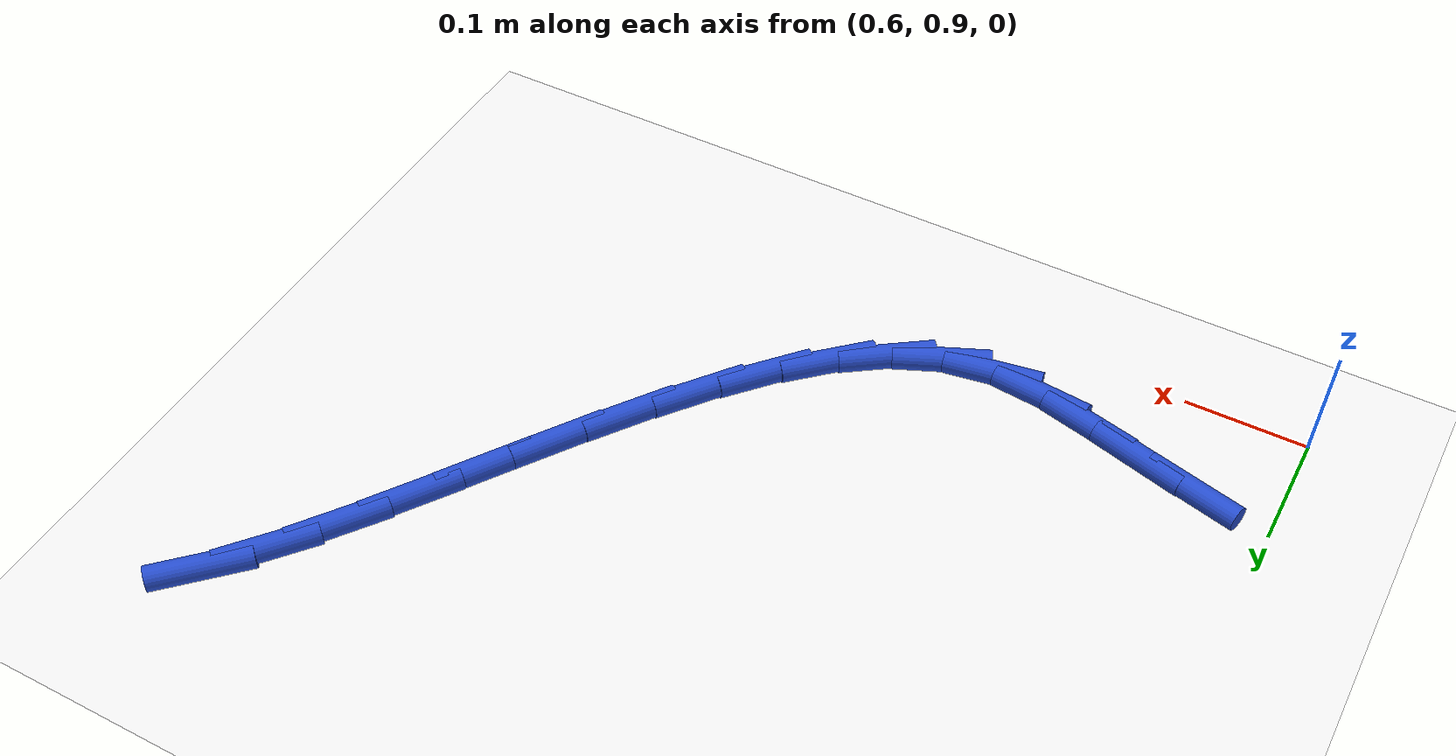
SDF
<sdf version="1.6">
 <world name="default">
  <model name="ground_plane">
   <static>1</static>
   <link name="link">
    <collision name="collision">
     <geometry><plane><normal>0 0 1</normal><size>100 100</size></plane></geometry>
     <surface><friction><ode><mu>100</mu><mu2>50</mu2></ode></friction></surface>
    </collision>
    <visual name="visual">
     <cast_shadows>0</cast_shadows>
     <geometry><plane><normal>0 0 1</normal><size>100 100</size></plane></geometry>
     <material>
      <script><uri>file://media/materials/scripts/gazebo.material</uri><name>Gazebo/WhiteGlow</name></script>
     </material>
    </visual>
   </link>
  </model>
  <model name="line">
   <link name="link_32">
    <pose>0.6630423774283201 0.9929440717888439 0.01 0 1.57 -0.24759428176950896</pose>
    <collision name="collision">
     <geometry><cylinder><radius>0.01</radius><length>0.08</length></cylinder></geometry>
    </collision>
    <visual name="visual">
     <material>
      <script><name>Gazebo/Blue</name><uri>file://media/materials/scripts/gazebo.material</uri></script>
     </material>
     <geometry><cylinder><radius>0.01</radius><length>0.08</length></cylinder></geometry>
    </visual>
   </link>
   <link name="link_33">
    <pose>0.7106921801257884 0.9808991108439356 0.01 0 1.57 -0.2659017500576483</pose>
    <collision name="collision">
     <geometry><cylinder><radius>0.01</radius><length>0.08</length></cylinder></geometry>
    </collision>
    <visual name="visual">
     <material>
      <script><name>Gazebo/Blue</name><uri>file://media/materials/scripts/gazebo.material</uri></script>
     </material>
     <geometry><cylinder><radius>0.01</radius><length>0.08</length></cylinder></geometry>
    </visual>
   </link>
   <link name="link_34">
    <pose>0.7570323707288211 0.9682783157123244 0.01 0 1.57 -0.2380853753194528</pose>
    <collision name="collision">
     <geometry><cylinder><radius>0.01</radius><length>0.08</length></cylinder></geometry>
    </collision>
    <visual name="visual">
     <material>
      <script><name>Gazebo/Blue</name><uri>file://media/materials/scripts/gazebo.material</uri></script>
     </material>
     <geometry><cylinder><radius>0.01</radius><length>0.08</length></cylinder></geometry>
    </visual>
   </link>
   <link name="link_35">
    <pose>0.8017753994072406 0.957419703183818 0.01 0 1.57 -0.09836362308103652</pose>
    <collision name="collision">
     <geometry><cylinder><radius>0.01</radius><length>0.08</length></cylinder></geometry>
    </collision>
    <visual name="visual">
     <material>
      <script><name>Gazebo/Blue</name><uri>file://media/materials/scripts/gazebo.material</uri></script>
     </material>
     <geometry><cylinder><radius>0.01</radius><length>0.08</length></cylinder></geometry>
    </visual>
   </link>
   <link name="link_36">
    <pose>0.8449845640259951 0.9531557324456068 0.01 0 1.57 0.16148460717505797</pose>
    <collision name="collision">
     <geometry><cylinder><radius>0.01</radius><length>0.08</length></cylinder></geometry>
    </collision>
    <visual name="visual">
     <material>
      <script><name>Gazebo/Blue</name><uri>file://media/materials/scripts/gazebo.material</uri></script>
     </material>
     <geometry><cylinder><radius>0.01</radius><length>0.08</length></cylinder></geometry>
    </visual>
   </link>
   <link name="link_37">
    <pose>0.8867484457921553 0.9599591981775714 0.01 0 1.57 0.4220266790031647</pose>
    <collision name="collision">
     <geometry><cylinder><radius>0.01</radius><length>0.08</length></cylinder></geometry>
    </collision>
    <visual name="visual">
     <material>
      <script><name>Gazebo/Blue</name><uri>file://media/materials/scripts/gazebo.material</uri></script>
     </material>
     <geometry><cylinder><radius>0.01</radius><length>0.08</length></cylinder></geometry>
    </visual>
   </link>
   <link name="link_38">
    <pose>0.9271526825461279 0.9781009269569306 0.01 0 1.57 0.6175205332455116</pose>
    <collision name="collision">
     <geometry><cylinder><radius>0.01</radius><length>0.08</length></cylinder></geometry>
    </collision>
    <visual name="visual">
     <material>
      <script><name>Gazebo/Blue</name><uri>file://media/materials/scripts/gazebo.material</uri></script>
     </material>
     <geometry><cylinder><radius>0.01</radius><length>0.08</length></cylinder></geometry>
    </visual>
   </link>
   <link name="link_39">
    <pose>0.966281537390652 1.0058891615231023 0.01 0 1.57 0.7554648651735559</pose>
    <collision name="collision">
     <geometry><cylinder><radius>0.01</radius><length>0.08</length></cylinder></geometry>
    </collision>
    <visual name="visual">
     <material>
      <script><name>Gazebo/Blue</name><uri>file://media/materials/scripts/gazebo.material</uri></script>
     </material>
     <geometry><cylinder><radius>0.01</radius><length>0.08</length></cylinder></geometry>
    </visual>
   </link>
   <link name="link_40">
    <pose>1.0042192656612905 1.041621056151405 0.01 0 1.57 0.8505547769216781</pose>
    <collision name="collision">
     <geometry><cylinder><radius>0.01</radius><length>0.08</length></cylinder></geometry>
    </collision>
    <visual name="visual">
     <material>
      <script><name>Gazebo/Blue</name><uri>file://media/materials/scripts/gazebo.material</uri></script>
     </material>
     <geometry><cylinder><radius>0.01</radius><length>0.08</length></cylinder></geometry>
    </visual>
   </link>
   <link name="link_41">
    <pose>1.0410501226936089 1.0835937651171585 0.01 0 1.57 0.9146848388607492</pose>
    <collision name="collision">
     <geometry><cylinder><radius>0.01</radius><length>0.08</length></cylinder></geometry>
    </collision>
    <visual name="visual">
     <material>
      <script><name>Gazebo/Blue</name><uri>file://media/materials/scripts/gazebo.material</uri></script>
     </material>
     <geometry><cylinder><radius>0.01</radius><length>0.08</length></cylinder></geometry>
    </visual>
   </link>
   <link name="link_42">
    <pose>1.0768583638231708 1.1301044426956826 0.01 0 1.57 0.9556256558031722</pose>
    <collision name="collision">
     <geometry><cylinder><radius>0.01</radius><length>0.08</length></cylinder></geometry>
    </collision>
    <visual name="visual">
     <material>
      <script><name>Gazebo/Blue</name><uri>file://media/materials/scripts/gazebo.material</uri></script>
     </material>
     <geometry><cylinder><radius>0.01</radius><length>0.08</length></cylinder></geometry>
    </visual>
   </link>
   <link name="link_43">
    <pose>1.1117282443855405 1.1794502431622962 0.01 0 1.57 0.9778218241050537</pose>
    <collision name="collision">
     <geometry><cylinder><radius>0.01</radius><length>0.08</length></cylinder></geometry>
    </collision>
    <visual name="visual">
     <material>
      <script><name>Gazebo/Blue</name><uri>file://media/materials/scripts/gazebo.material</uri></script>
     </material>
     <geometry><cylinder><radius>0.01</radius><length>0.08</length></cylinder></geometry>
    </visual>
   </link>
   <link name="link_44">
    <pose>1.1457440197162827 1.229928320792319 0.01 0 1.57 0.9831509697490062</pose>
    <collision name="collision">
     <geometry><cylinder><radius>0.01</radius><length>0.08</length></cylinder></geometry>
    </collision>
    <visual name="visual">
     <material>
      <script><name>Gazebo/Blue</name><uri>file://media/materials/scripts/gazebo.material</uri></script>
     </material>
     <geometry><cylinder><radius>0.01</radius><length>0.08</length></cylinder></geometry>
    </visual>
   </link>
   <link name="link_45">
    <pose>1.1789899451509618 1.2798358298610706 0.01 0 1.57 0.9711955081836428</pose>
    <collision name="collision">
     <geometry><cylinder><radius>0.01</radius><length>0.08</length></cylinder></geometry>
    </collision>
    <visual name="visual">
     <material>
      <script><name>Gazebo/Blue</name><uri>file://media/materials/scripts/gazebo.material</uri></script>
     </material>
     <geometry><cylinder><radius>0.01</radius><length>0.08</length></cylinder></geometry>
    </visual>
   </link>
   <link name="link_46">
    <pose>1.211550276025141 1.32746992464387 0.01 0 1.57 0.9388933718151196</pose>
    <collision name="collision">
     <geometry><cylinder><radius>0.01</radius><length>0.08</length></cylinder></geometry>
    </collision>
    <visual name="visual">
     <material>
      <script><name>Gazebo/Blue</name><uri>file://media/materials/scripts/gazebo.material</uri></script>
     </material>
     <geometry><cylinder><radius>0.01</radius><length>0.08</length></cylinder></geometry>
    </visual>
   </link>
   <link name="link_47">
    <pose>1.2435092676743862 1.3711277594160374 0.01 0 1.57 0.879283843018872</pose>
    <collision name="collision">
     <geometry><cylinder><radius>0.01</radius><length>0.08</length></cylinder></geometry>
    </collision>
    <visual name="visual">
     <material>
      <script><name>Gazebo/Blue</name><uri>file://media/materials/scripts/gazebo.material</uri></script>
     </material>
     <geometry><cylinder><radius>0.01</radius><length>0.08</length></cylinder></geometry>
    </visual>
   </link>
   <link name="link_48">
    <pose>1.27495117543426 1.4091064884528917 0.01 0 1.57 0.7787056913636458</pose>
    <collision name="collision">
     <geometry><cylinder><radius>0.01</radius><length>0.08</length></cylinder></geometry>
    </collision>
    <visual name="visual">
     <material>
      <script><name>Gazebo/Blue</name><uri>file://media/materials/scripts/gazebo.material</uri></script>
     </material>
     <geometry><cylinder><radius>0.01</radius><length>0.08</length></cylinder></geometry>
    </visual>
   </link>
  </model>
 </world>
</sdf>
